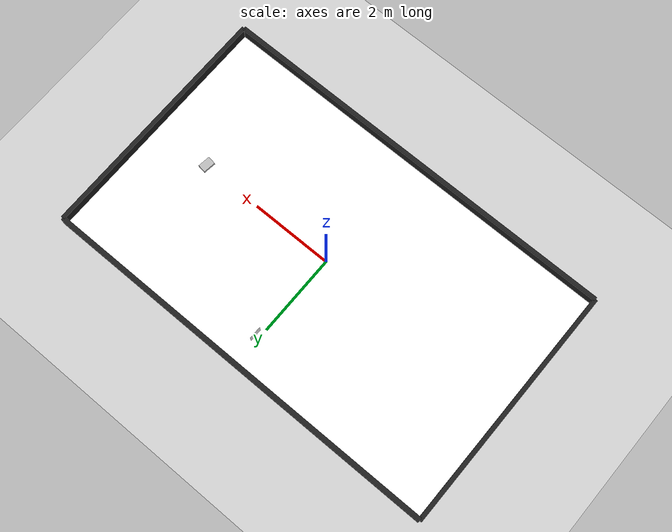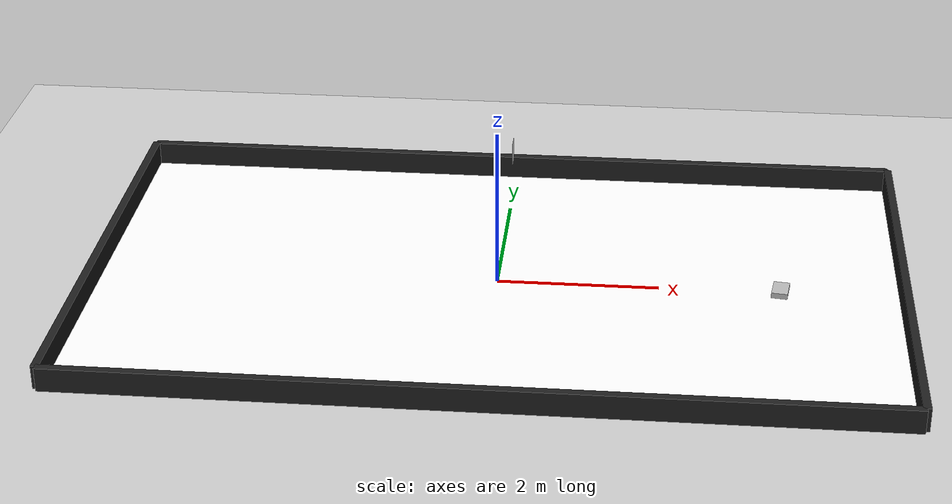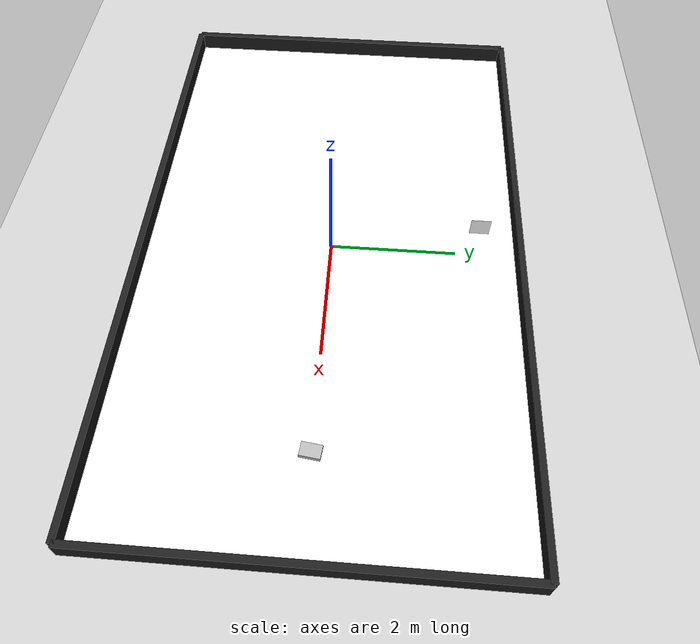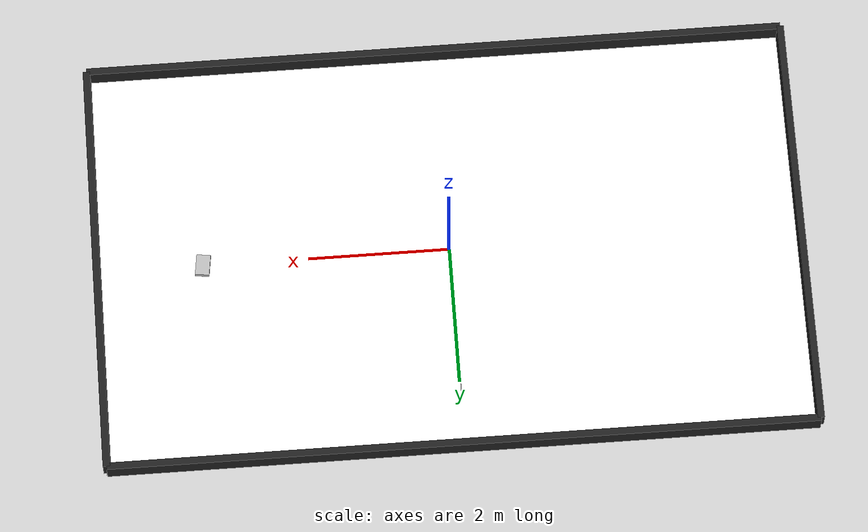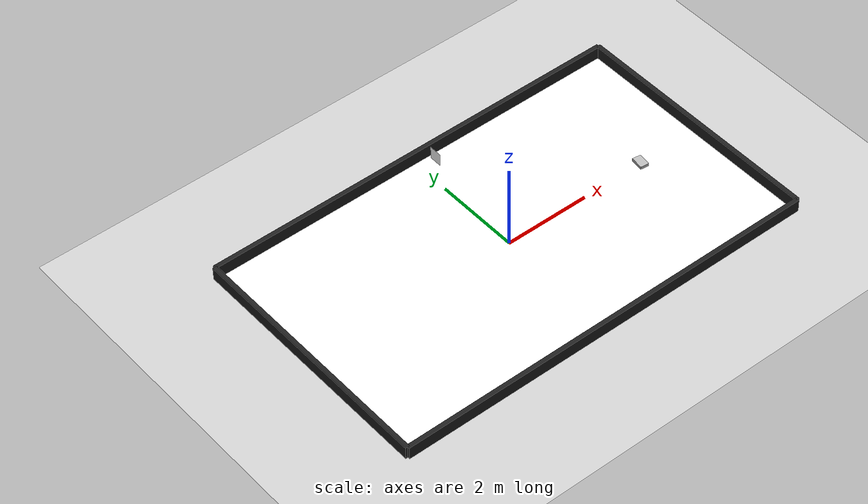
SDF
<sdf version="1.7">
 <world name="default">
  <light name="sun" type="directional">
   <pose>0 0 10 0 -0 0</pose>
   <diffuse>0.8 0.8 0.8 1</diffuse>
   <specular>0.2 0.2 0.2 1</specular>
   <attenuation>
    <range>1000</range>
    <constant>0.9</constant>
    <linear>0.01</linear>
    <quadratic>0.001</quadratic>
   </attenuation>
   <direction>-0.5 0.1 -0.9</direction>
   <spot><inner_angle>0</inner_angle><outer_angle>0</outer_angle><falloff>0</falloff></spot>
  </light>
  <model name="ground_plane">
   <static>1</static>
   <link name="link">
    <collision name="collision">
     <geometry><plane><normal>0 0 1</normal><size>100 100</size></plane></geometry>
     <surface><friction><ode><mu>100</mu><mu2>50</mu2></ode></friction></surface>
    </collision>
    <visual name="visual">
     <cast_shadows>0</cast_shadows>
     <geometry><plane><normal>0 0 1</normal><size>100 100</size></plane></geometry>
     <material>
      <script><uri>file://media/materials/scripts/gazebo.material</uri><name>Gazebo/Grey</name></script>
     </material>
    </visual>
   </link>
  </model>
  <gravity>0 0 -9.8</gravity>
  <magnetic_field>6e-06 2.3e-05 -4.2e-05</magnetic_field>
  <atmosphere type="adiabatic"/>
  <physics type="ode">
   <max_step_size>0.001</max_step_size>
   <real_time_factor>1</real_time_factor>
   <real_time_update_rate>1000</real_time_update_rate>
  </physics>
  <scene><ambient>0.4 0.4 0.4 1</ambient><background>0.7 0.7 0.7 1</background><shadows>1</shadows></scene>
  <audio><device>default</device></audio>
  <spherical_coordinates>
   <surface_model>EARTH_WGS84</surface_model>
   <latitude_deg>0</latitude_deg>
   <longitude_deg>0</longitude_deg>
   <elevation>0</elevation>
   <heading_deg>0</heading_deg>
  </spherical_coordinates>
  <model name="autorace">
   <static>1</static>
   <pose>0.012755 0.031508 0 0 -0 0</pose>
   <link name="base">
    <visual name="base_visual_plane">
     <pose>0 0 0.001 0 -0 0</pose>
     <geometry><plane><normal>0 0 1</normal><size>10 6</size></plane></geometry>
     <material>
      <script>
       <uri>model://autorace/materials/scripts</uri>
       <uri>model://autorace/materials/textures</uri>
       <name>Autorace/Albedo</name>
      </script>
      <ambient>1 1 1 1</ambient>
      <diffuse>1 1 1 1</diffuse>
      <specular>0 0 0 1</specular>
     </material>
    </visual>
   </link>
  </model>
  <model name="wall_10m">
   <static>1</static>
   <pose>0 3 0.15 0 -0 0</pose>
   <link name="link">
    <inertial>
     <mass>1</mass>
     <inertia><ixx>1</ixx><iyy>1</iyy><izz>1</izz><ixy>0</ixy><ixz>0</ixz><iyz>0</iyz></inertia>
    </inertial>
    <collision name="collision"><geometry><box><size>10 0.1 0.3</size></box></geometry></collision>
    <visual name="visual">
     <geometry><box><size>10 0.1 0.3</size></box></geometry>
     <material>
      <script><uri>file://media/materials/scripts/gazebo.material</uri><name>Gazebo/Black</name></script>
     </material>
    </visual>
   </link>
  </model>
  <model name="wall_10m_0">
   <static>1</static>
   <pose>0 -3 0.15 0 -0 0</pose>
   <link name="link">
    <inertial>
     <mass>1</mass>
     <inertia><ixx>1</ixx><iyy>1</iyy><izz>1</izz><ixy>0</ixy><ixz>0</ixz><iyz>0</iyz></inertia>
    </inertial>
    <collision name="collision"><geometry><box><size>10 0.1 0.3</size></box></geometry></collision>
    <visual name="visual">
     <geometry><box><size>10 0.1 0.3</size></box></geometry>
     <material>
      <script><uri>file://media/materials/scripts/gazebo.material</uri><name>Gazebo/Black</name></script>
     </material>
    </visual>
   </link>
  </model>
  <model name="wall_6m">
   <static>1</static>
   <pose>-5 0 0.15 0 -0 1.5707</pose>
   <link name="link">
    <inertial>
     <mass>1</mass>
     <inertia><ixx>1</ixx><iyy>1</iyy><izz>1</izz><ixy>0</ixy><ixz>0</ixz><iyz>0</iyz></inertia>
    </inertial>
    <collision name="collision"><geometry><box><size>6 0.1 0.3</size></box></geometry></collision>
    <visual name="visual">
     <geometry><box><size>6 0.1 0.3</size></box></geometry>
     <material>
      <script><uri>file://media/materials/scripts/gazebo.material</uri><name>Gazebo/Black</name></script>
     </material>
    </visual>
   </link>
  </model>
  <model name="wall_6m_0">
   <static>1</static>
   <pose>5 0 0.15 0 -0 1.5707</pose>
   <link name="link">
    <inertial>
     <mass>1</mass>
     <inertia><ixx>1</ixx><iyy>1</iyy><izz>1</izz><ixy>0</ixy><ixz>0</ixz><iyz>0</iyz></inertia>
    </inertial>
    <collision name="collision"><geometry><box><size>6 0.1 0.3</size></box></geometry></collision>
    <visual name="visual">
     <geometry><box><size>6 0.1 0.3</size></box></geometry>
     <material>
      <script><uri>file://media/materials/scripts/gazebo.material</uri><name>Gazebo/Black</name></script>
     </material>
    </visual>
   </link>
  </model>
  <model name="moving_box">
   <pose>3.5 0 0.0 0 0 -1.7</pose>
   <link name="link">
    <collision name="collision"><geometry><box><size>.3 .2 .3</size></box></geometry></collision>
    <visual name="visual"><geometry><box><size>.3 .2 .15</size></box></geometry></visual>
   </link>
   <plugin name="planar_move" filename="libgazebo_ros_planar_move.so">
    <ros>
     <namespace>demo</namespace>
     <remapping>cmd_vel:=box_cmd_demo</remapping>
     <remapping>odom:=box_odom_demo</remapping>
    </ros>
   </plugin>
  </model>
  <include><uri>model://left_marker</uri><pose>0 2.3 0.7 1.5707 0 0</pose></include>
 </world>
</sdf>

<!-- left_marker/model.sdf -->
<sdf version="1.7">
  <model name="left marker">
    <static>true</static>
    <pose>0 0 0 0 0 0</pose>

    <link name="base">

      <!-- 텍스처가 입혀진 10m x 6m 평면 (z=0.001로 z-fighting 방지) -->
      <visual name="base_visual_plane">
        <pose>0 0 0.001 0 1.5707 0</pose>
        <geometry>
          <plane>
            <normal>0 0 1</normal>
            <size>.3 .3</size>
          </plane>
        </geometry>
        <material>
          <script>
            <!-- 스크립트/텍스처 경로 등록 -->
            <uri>model://left_marker/materials/scripts</uri>
            <uri>model://left_marker/materials/textures</uri>
            <!-- ★ 스크립트에 정의한 이름과 동일해야 함 -->
            <name>Leftmarker/Albedo</name>
          </script>
          <!-- 아래 색상들은 스크립트가 대체하므로 굳이 필요 없음 (남겨도 무방) -->
          <ambient>1 1 1 1</ambient>
          <diffuse>1 1 1 1</diffuse>
          <specular>0 0 0 1</specular>
        </material>
      </visual>
    </link>
  </model>
</sdf>
